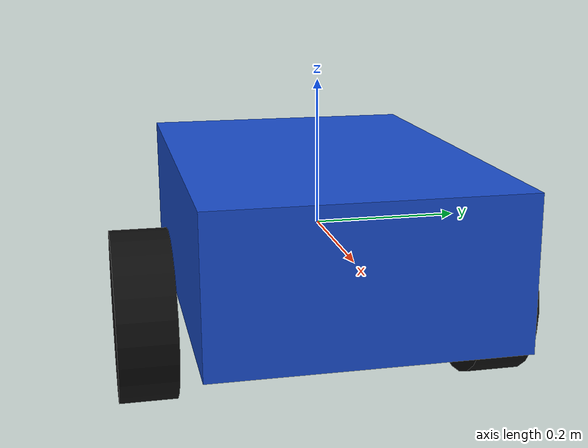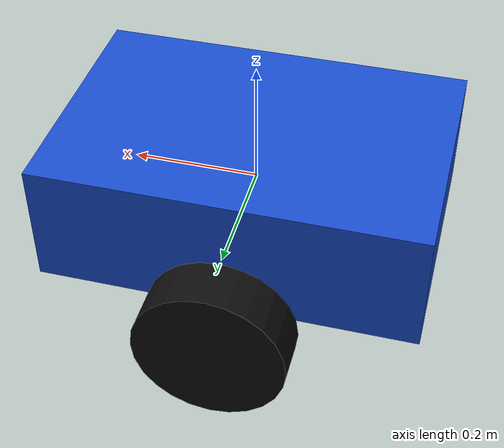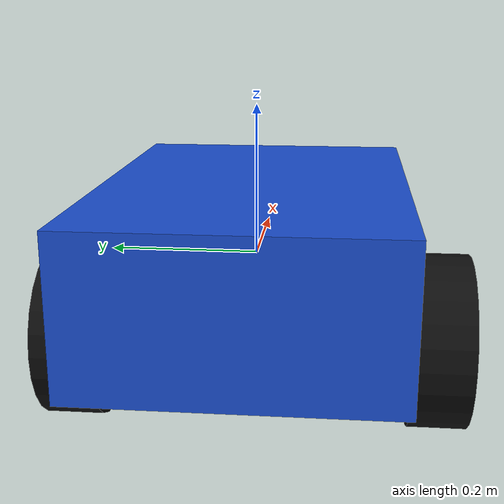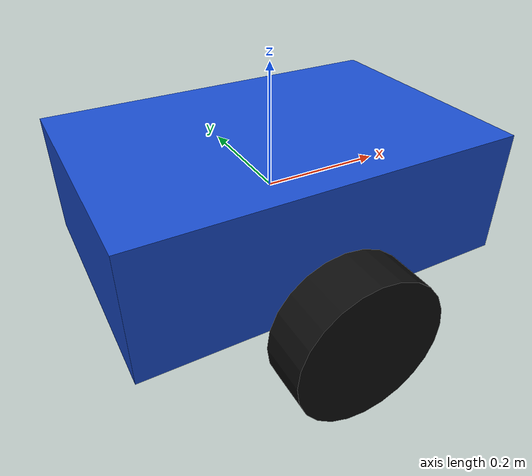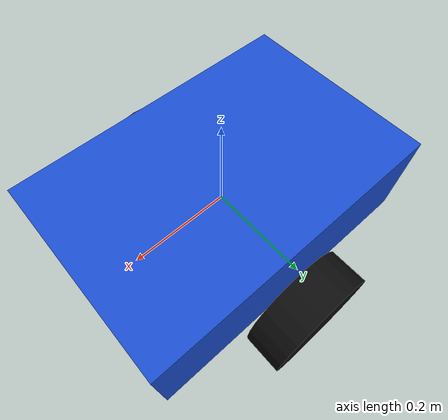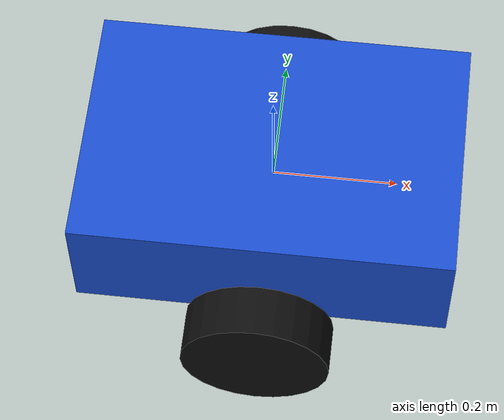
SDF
<?xml version="1.0"?>

<sdf version="1.10">
  <model name="vehicle_blue">

    <!-- Base chassis               -->

    <link name="base_link">

      <pose>0 0 0 0 0 0</pose>

      <inertial>
        <mass>5.0</mass>

        <inertia>
          <ixx>0.080</ixx>
          <iyy>0.150</iyy>
          <izz>0.200</izz>
          <ixy>0</ixy>
          <ixz>0</ixz>
          <iyz>0</iyz>
        </inertia>
      </inertial>

      <collision name="base_collision">
        <geometry>
          <box>
            <size>0.60 0.40 0.20</size>
          </box>
        </geometry>
      </collision>

      <visual name="base_visual">
        <geometry>
          <box>
            <size>0.60 0.40 0.20</size>
          </box>
        </geometry>

        <material>
          <ambient>0.1 0.3 0.8 1</ambient>
          <diffuse>0.1 0.3 0.8 1</diffuse>
        </material>
      </visual>

    </link>

    <!-- Left wheel                -->

    <link name="left_wheel">

      <!-- Wheel center -->
      <pose>0 0.25 -0.12 1.57079632679 0 0</pose>

      <inertial>
        <mass>0.5</mass>

        <inertia>
          <ixx>0.005</ixx>
          <iyy>0.005</iyy>
          <izz>0.005</izz>
          <ixy>0</ixy>
          <ixz>0</ixz>
          <iyz>0</iyz>
        </inertia>
      </inertial>

      <collision name="left_wheel_collision">

        <geometry>
          <cylinder>
            <radius>0.12</radius>
            <length>0.08</length>
          </cylinder>
        </geometry>

      </collision>

      <visual name="left_wheel_visual">

        <geometry>
          <cylinder>
            <radius>0.12</radius>
            <length>0.08</length>
          </cylinder>
        </geometry>

        <material>
          <ambient>0.05 0.05 0.05 1</ambient>
          <diffuse>0.05 0.05 0.05 1</diffuse>
        </material>

      </visual>

    </link>

    <!-- Right wheel               -->

    <link name="right_wheel">

      <!-- Wheel center -->
      <pose>0 -0.25 -0.12 1.57079632679 0 0</pose>

      <inertial>
        <mass>0.5</mass>

        <inertia>
          <ixx>0.005</ixx>
          <iyy>0.005</iyy>
          <izz>0.005</izz>
          <ixy>0</ixy>
          <ixz>0</ixz>
          <iyz>0</iyz>
        </inertia>
      </inertial>

      <collision name="right_wheel_collision">

        <geometry>
          <cylinder>
            <radius>0.12</radius>
            <length>0.08</length>
          </cylinder>
        </geometry>

      </collision>

      <visual name="right_wheel_visual">

        <geometry>
          <cylinder>
            <radius>0.12</radius>
            <length>0.08</length>
          </cylinder>
        </geometry>

        <material>
          <ambient>0.05 0.05 0.05 1</ambient>
          <diffuse>0.05 0.05 0.05 1</diffuse>
        </material>

      </visual>

    </link>

    <!-- Left wheel joint          -->

    <joint name="left_wheel_joint" type="revolute">

      <parent>base_link</parent>
      <child>left_wheel</child>

      <axis>
        <xyz>0 1 0</xyz>
      </axis>

    </joint>

    <!-- Right wheel joint         -->

    <joint name="right_wheel_joint" type="revolute">

      <parent>base_link</parent>
      <child>right_wheel</child>

      <axis>
        <xyz>0 1 0</xyz>
      </axis>

    </joint>

    <!-- Differential drive        -->

    <plugin
      filename="gz-sim-diff-drive-system"
      name="gz::sim::systems::DiffDrive">

      <left_joint>left_wheel_joint</left_joint>
      <right_joint>right_wheel_joint</right_joint>

      <wheel_separation>0.50</wheel_separation>
      <wheel_radius>0.12</wheel_radius>

      <topic>/model/vehicle_blue/cmd_vel</topic>

      <odom_topic>/model/vehicle_blue/odometry</odom_topic>

      <frame_id>odom</frame_id>
      <child_frame_id>base_link</child_frame_id>

    </plugin>

  </model>
</sdf>
